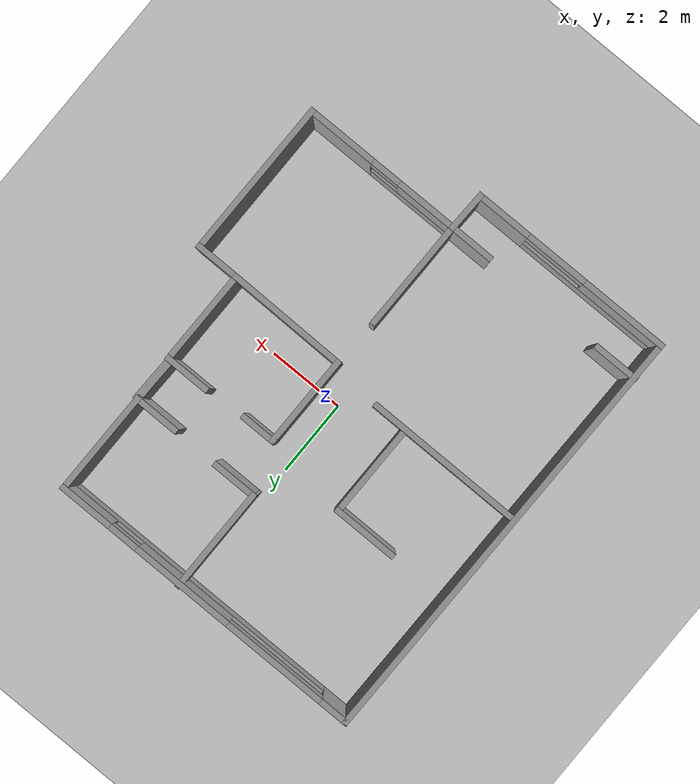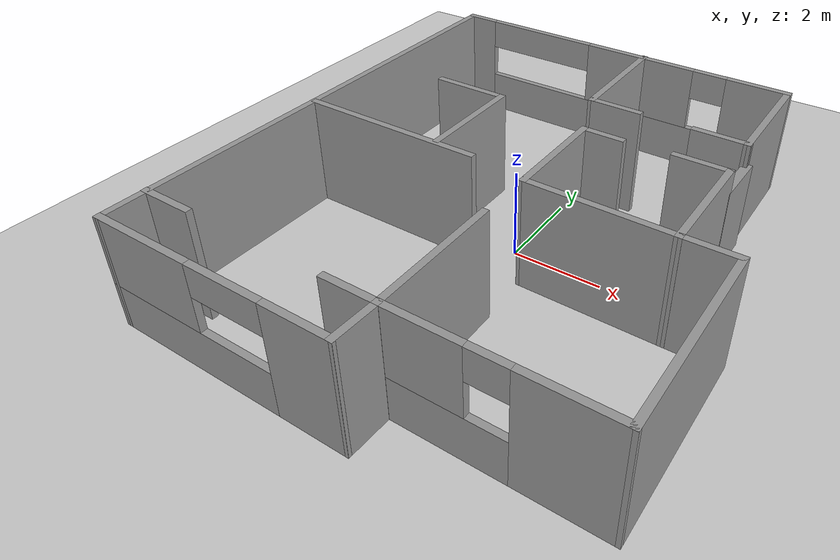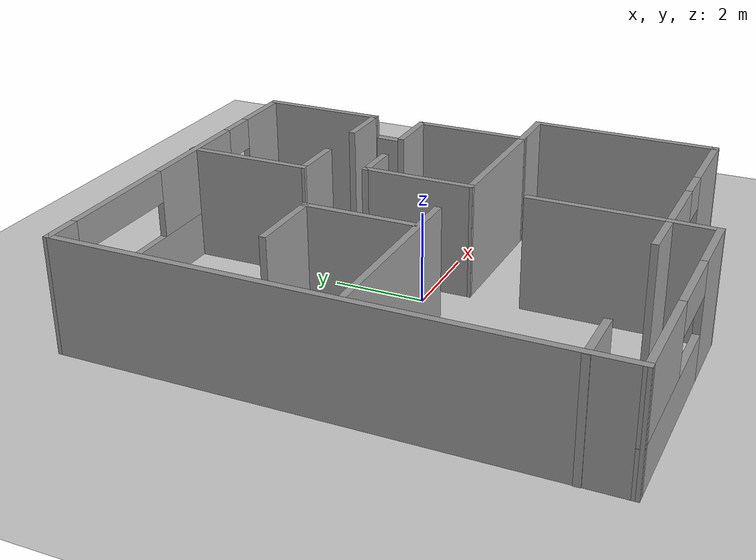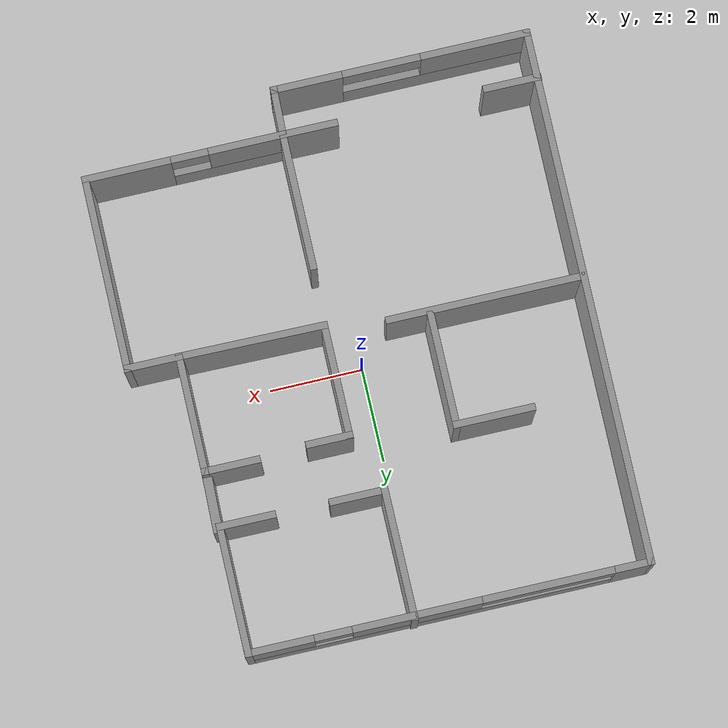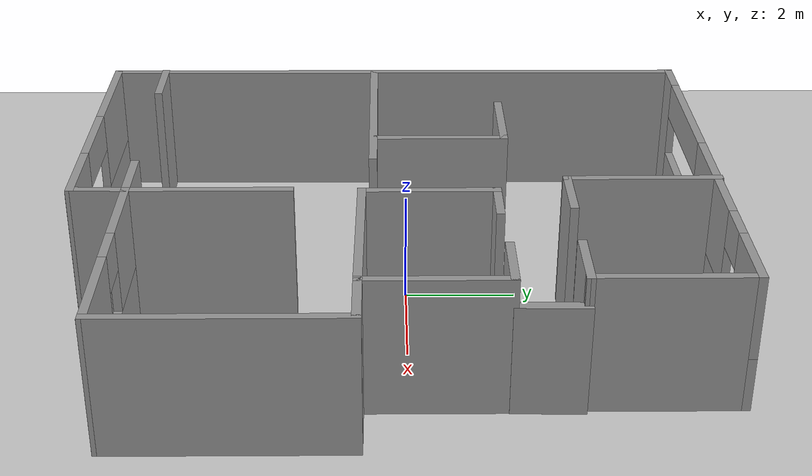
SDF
<sdf version="1.6">
 <world name="default">
  <light name="sun" type="directional">
   <pose>0 0 10 0 -0 0</pose>
   <diffuse>0.8 0.8 0.8 1</diffuse>
   <specular>0.2 0.2 0.2 1</specular>
   <attenuation>
    <range>1000</range>
    <constant>0.9</constant>
    <linear>0.01</linear>
    <quadratic>0.001</quadratic>
   </attenuation>
   <direction>-0.5 0.1 -0.9</direction>
  </light>
  <model name="ground_plane">
   <static>1</static>
   <link name="link">
    <collision name="collision">
     <geometry><plane><normal>0 0 1</normal><size>100 100</size></plane></geometry>
     <surface>
      <contact><collide_bitmask>65535</collide_bitmask></contact>
      <friction><ode><mu>100</mu><mu2>50</mu2></ode></friction>
     </surface>
    </collision>
    <visual name="visual">
     <cast_shadows>0</cast_shadows>
     <geometry><plane><normal>0 0 1</normal><size>100 100</size></plane></geometry>
     <material>
      <script><uri>file://media/materials/scripts/gazebo.material</uri><name>Gazebo/Grey</name></script>
     </material>
    </visual>
   </link>
  </model>
  <gravity>0 0 -9.8</gravity>
  <magnetic_field>6e-06 2.3e-05 -4.2e-05</magnetic_field>
  <atmosphere type="adiabatic"/>
  <physics name="default_physics" default="0" type="ode">
   <max_step_size>0.001</max_step_size>
   <real_time_factor>1</real_time_factor>
   <real_time_update_rate>1000</real_time_update_rate>
  </physics>
  <scene><ambient>0.4 0.4 0.4 1</ambient><background>0.7 0.7 0.7 1</background><shadows>1</shadows></scene>
  <audio><device>default</device></audio>
  <spherical_coordinates>
   <surface_model>EARTH_WGS84</surface_model>
   <latitude_deg>0</latitude_deg>
   <longitude_deg>0</longitude_deg>
   <elevation>0</elevation>
   <heading_deg>0</heading_deg>
  </spherical_coordinates>
  <model name="home_02room">
   <pose>-0.039902 -0.17498 0 0 -0 0</pose>
   <link name="Door_0">
    <collision name="Door_0_Collision">
     <geometry><box><size>1.26562 0.2 2</size></box></geometry>
     <pose>0 0 1 0 -0 0</pose>
    </collision>
    <visual name="Door_0_Visual">
     <pose>0 0 1 0 -0 0</pose>
     <geometry><box><size>1.26562 0.2 2</size></box></geometry>
     <material>
      <script><uri>file://media/materials/scripts/gazebo.material</uri><name>Gazebo/Grey</name></script>
     </material>
    </visual>
    <pose>3.73558 2.43666 0 0 -0 1.55027</pose>
   </link>
   <link name="Wall_0">
    <pose>-0.548273 5.66521 0 0 -0 0</pose>
    <visual name="Wall_0_Visual_0">
     <pose>-3.89887 0 1.25 0 -0 0</pose>
     <geometry><box><size>0.829522 0.15 2.5</size></box></geometry>
     <material>
      <script><uri>file://media/materials/scripts/gazebo.material</uri><name>Gazebo/Grey</name></script>
      <ambient>1 1 1 1</ambient>
     </material>
     <meta><layer>0</layer></meta>
    </visual>
    <collision name="Wall_0_Collision_0">
     <geometry><box><size>0.829522 0.15 2.5</size></box></geometry>
     <pose>-3.89887 0 1.25 0 -0 0</pose>
    </collision>
    <visual name="Wall_0_Visual_1">
     <pose>0.414761 0 0.5 0 -0 0</pose>
     <geometry><box><size>7.79774 0.15 1</size></box></geometry>
     <material>
      <script><uri>file://media/materials/scripts/gazebo.material</uri><name>Gazebo/Grey</name></script>
      <ambient>1 1 1 1</ambient>
     </material>
     <meta><layer>0</layer></meta>
    </visual>
    <collision name="Wall_0_Collision_1">
     <geometry><box><size>7.79774 0.15 1</size></box></geometry>
     <pose>0.414761 0 0.5 0 -0 0</pose>
    </collision>
    <visual name="Wall_0_Visual_2">
     <pose>0.679806 0 1.75 0 -0 0</pose>
     <geometry><box><size>2.73783 0.15 1.5</size></box></geometry>
     <material>
      <script><uri>file://media/materials/scripts/gazebo.material</uri><name>Gazebo/Grey</name></script>
      <ambient>1 1 1 1</ambient>
     </material>
     <meta><layer>0</layer></meta>
    </visual>
    <collision name="Wall_0_Collision_2">
     <geometry><box><size>2.73783 0.15 1.5</size></box></geometry>
     <pose>0.679806 0 1.75 0 -0 0</pose>
    </collision>
    <visual name="Wall_0_Visual_3">
     <pose>3.58118 0 1.75 0 -0 0</pose>
     <geometry><box><size>1.46491 0.15 1.5</size></box></geometry>
     <material>
      <script><uri>file://media/materials/scripts/gazebo.material</uri><name>Gazebo/Grey</name></script>
      <ambient>1 1 1 1</ambient>
     </material>
     <meta><layer>0</layer></meta>
    </visual>
    <collision name="Wall_0_Collision_3">
     <geometry><box><size>1.46491 0.15 1.5</size></box></geometry>
     <pose>3.58118 0 1.75 0 -0 0</pose>
    </collision>
    <visual name="Wall_0_Visual_4">
     <pose>-2.08661 0 2.15 0 -0 0</pose>
     <geometry><box><size>2.795 0.15 0.7</size></box></geometry>
     <material>
      <script><uri>file://media/materials/scripts/gazebo.material</uri><name>Gazebo/Grey</name></script>
      <ambient>1 1 1 1</ambient>
     </material>
     <meta><layer>0</layer></meta>
    </visual>
    <collision name="Wall_0_Collision_4">
     <geometry><box><size>2.795 0.15 0.7</size></box></geometry>
     <pose>-2.08661 0 2.15 0 -0 0</pose>
    </collision>
    <visual name="Wall_0_Visual_5">
     <pose>2.44872 0 2.15 0 -0 0</pose>
     <geometry><box><size>0.8 0.15 0.7</size></box></geometry>
     <material>
      <script><uri>file://media/materials/scripts/gazebo.material</uri><name>Gazebo/Grey</name></script>
      <ambient>1 1 1 1</ambient>
     </material>
     <meta><layer>0</layer></meta>
    </visual>
    <collision name="Wall_0_Collision_5">
     <geometry><box><size>0.8 0.15 0.7</size></box></geometry>
     <pose>2.44872 0 2.15 0 -0 0</pose>
    </collision>
   </link>
   <link name="Wall_11">
    <collision name="Wall_11_Collision">
     <geometry><box><size>1.11579 0.15 2.5</size></box></geometry>
     <pose>0 0 1.25 0 -0 0</pose>
    </collision>
    <visual name="Wall_11_Visual">
     <pose>0 0 1.25 0 -0 0</pose>
     <geometry><box><size>1.11579 0.15 2.5</size></box></geometry>
     <material>
      <script><uri>file://media/materials/scripts/gazebo.material</uri><name>Gazebo/Grey</name></script>
      <ambient>1 1 1 1</ambient>
     </material>
     <meta><layer>0</layer></meta>
    </visual>
    <pose>0.606653 -5.19653 0 0 -0 -1.59819</pose>
   </link>
   <link name="Wall_12">
    <pose>-2.1177 -5.68585 0 0 -0 -3.13915</pose>
    <visual name="Wall_12_Visual_0">
     <pose>-2.01949 0 1.25 0 -0 0</pose>
     <geometry><box><size>1.53329 0.15 2.5</size></box></geometry>
     <material>
      <script><uri>file://media/materials/scripts/gazebo.material</uri><name>Gazebo/Grey</name></script>
      <ambient>1 1 1 1</ambient>
     </material>
     <meta><layer>0</layer></meta>
    </visual>
    <collision name="Wall_12_Collision_0">
     <geometry><box><size>1.53329 0.15 2.5</size></box></geometry>
     <pose>-2.01949 0 1.25 0 -0 0</pose>
    </collision>
    <visual name="Wall_12_Visual_1">
     <pose>0.766646 0 0.5 0 -0 0</pose>
     <geometry><box><size>4.03897 0.15 1</size></box></geometry>
     <material>
      <script><uri>file://media/materials/scripts/gazebo.material</uri><name>Gazebo/Grey</name></script>
      <ambient>1 1 1 1</ambient>
     </material>
     <meta><layer>0</layer></meta>
    </visual>
    <collision name="Wall_12_Collision_1">
     <geometry><box><size>4.03897 0.15 1</size></box></geometry>
     <pose>0.766646 0 0.5 0 -0 0</pose>
    </collision>
    <visual name="Wall_12_Visual_2">
     <pose>1.60565 0 1.75 0 -0 0</pose>
     <geometry><box><size>2.36097 0.15 1.5</size></box></geometry>
     <material>
      <script><uri>file://media/materials/scripts/gazebo.material</uri><name>Gazebo/Grey</name></script>
      <ambient>1 1 1 1</ambient>
     </material>
     <meta><layer>0</layer></meta>
    </visual>
    <collision name="Wall_12_Collision_2">
     <geometry><box><size>2.36097 0.15 1.5</size></box></geometry>
     <pose>1.60565 0 1.75 0 -0 0</pose>
    </collision>
    <visual name="Wall_12_Visual_3">
     <pose>-0.413841 0 2.15 0 -0 0</pose>
     <geometry><box><size>1.678 0.15 0.7</size></box></geometry>
     <material>
      <script><uri>file://media/materials/scripts/gazebo.material</uri><name>Gazebo/Grey</name></script>
      <ambient>1 1 1 1</ambient>
     </material>
     <meta><layer>0</layer></meta>
    </visual>
    <collision name="Wall_12_Collision_3">
     <geometry><box><size>1.678 0.15 0.7</size></box></geometry>
     <pose>-0.413841 0 2.15 0 -0 0</pose>
    </collision>
   </link>
   <link name="Wall_13">
    <collision name="Wall_13_Collision">
     <geometry><box><size>11.5078 0.15 2.5</size></box></geometry>
     <pose>0 0 1.25 0 -0 0</pose>
    </collision>
    <visual name="Wall_13_Visual">
     <pose>0 0 1.25 0 -0 0</pose>
     <geometry><box><size>11.5078 0.15 2.5</size></box></geometry>
     <material>
      <script><uri>file://media/materials/scripts/gazebo.material</uri><name>Gazebo/Grey</name></script>
      <ambient>1 1 1 1</ambient>
     </material>
     <meta><layer>0</layer></meta>
    </visual>
    <pose>-4.80785 -0.013627 0 0 -0 1.5671</pose>
   </link>
   <link name="Wall_15">
    <collision name="Wall_15_Collision">
     <geometry><box><size>4.25 0.15 2.5</size></box></geometry>
     <pose>0 0 1.25 0 -0 0</pose>
    </collision>
    <visual name="Wall_15_Visual">
     <pose>0 0 1.25 0 -0 0</pose>
     <geometry><box><size>4.25 0.15 2.5</size></box></geometry>
     <material>
      <script><uri>file://media/materials/scripts/gazebo.material</uri><name>Gazebo/Grey</name></script>
      <ambient>1 1 1 1</ambient>
     </material>
     <meta><layer>0</layer></meta>
    </visual>
    <pose>-2.71524 -0.419306 0 0 -0 0</pose>
   </link>
   <link name="Wall_17">
    <collision name="Wall_17_Collision">
     <geometry><box><size>2.83314 0.15 2.5</size></box></geometry>
     <pose>0 0 1.25 0 -0 0</pose>
    </collision>
    <visual name="Wall_17_Visual">
     <pose>0 0 1.25 0 -0 0</pose>
     <geometry><box><size>2.83314 0.15 2.5</size></box></geometry>
     <material>
      <script><uri>file://media/materials/scripts/gazebo.material</uri><name>Gazebo/Grey</name></script>
      <ambient>1 1 1 1</ambient>
     </material>
     <meta><layer>0</layer></meta>
    </visual>
    <pose>0.206676 4.35095 0 0 -0 -1.56781</pose>
   </link>
   <link name="Wall_18">
    <collision name="Wall_18_Collision">
     <geometry><box><size>1.25 0.15 2.5</size></box></geometry>
     <pose>0 0 1.25 0 -0 0</pose>
    </collision>
    <visual name="Wall_18_Visual">
     <pose>0 0 1.25 0 -0 0</pose>
     <geometry><box><size>1.25 0.15 2.5</size></box></geometry>
     <material>
      <script><uri>file://media/materials/scripts/gazebo.material</uri><name>Gazebo/Grey</name></script>
      <ambient>1 1 1 1</ambient>
     </material>
     <meta><layer>0</layer></meta>
    </visual>
    <pose>0.760681 3.00938 0 0 -0 0</pose>
   </link>
   <link name="Wall_2">
    <collision name="Wall_2_Collision">
     <geometry><box><size>2.82145 0.15 2.5</size></box></geometry>
     <pose>0 0 1.25 0 -0 0</pose>
    </collision>
    <visual name="Wall_2_Visual">
     <pose>0 0 1.25 0 -0 0</pose>
     <geometry><box><size>2.82145 0.15 2.5</size></box></geometry>
     <material>
      <script><uri>file://media/materials/scripts/gazebo.material</uri><name>Gazebo/Grey</name></script>
      <ambient>1 1 1 1</ambient>
     </material>
     <meta><layer>0</layer></meta>
    </visual>
    <pose>3.69034 4.32949 0 0 -0 -1.5708</pose>
   </link>
   <link name="Wall_20">
    <collision name="Wall_20_Collision">
     <geometry><box><size>1.26239 0.15 2.5</size></box></geometry>
     <pose>0 0 1.25 0 -0 0</pose>
    </collision>
    <visual name="Wall_20_Visual">
     <pose>0 0 1.25 0 -0 0</pose>
     <geometry><box><size>1.26239 0.15 2.5</size></box></geometry>
     <material>
      <script><uri>file://media/materials/scripts/gazebo.material</uri><name>Gazebo/Grey</name></script>
      <ambient>1 1 1 1</ambient>
     </material>
     <meta><layer>0</layer></meta>
    </visual>
    <pose>3.13415 2.99496 0 0 -0 -0.002155</pose>
   </link>
   <link name="Wall_22">
    <collision name="Wall_22_Collision">
     <geometry><box><size>1.75 0.15 2.5</size></box></geometry>
     <pose>0 0 1.25 0 -0 0</pose>
    </collision>
    <visual name="Wall_22_Visual">
     <pose>0 0 1.25 0 -0 0</pose>
     <geometry><box><size>1.75 0.15 2.5</size></box></geometry>
     <material>
      <script><uri>file://media/materials/scripts/gazebo.material</uri><name>Gazebo/Grey</name></script>
      <ambient>1 1 1 1</ambient>
     </material>
     <meta><layer>0</layer></meta>
    </visual>
    <pose>-2.33303 2.0173 0 0 -0 0</pose>
   </link>
   <link name="Wall_23">
    <collision name="Wall_23_Collision">
     <geometry><box><size>2.5 0.15 2.5</size></box></geometry>
     <pose>0 0 1.25 0 -0 0</pose>
    </collision>
    <visual name="Wall_23_Visual">
     <pose>0 0 1.25 0 -0 0</pose>
     <geometry><box><size>2.5 0.15 2.5</size></box></geometry>
     <material>
      <script><uri>file://media/materials/scripts/gazebo.material</uri><name>Gazebo/Grey</name></script>
      <ambient>1 1 1 1</ambient>
     </material>
     <meta><layer>0</layer></meta>
    </visual>
    <pose>-1.53303 0.842302 0 0 -0 -1.5708</pose>
   </link>
   <link name="Wall_25">
    <collision name="Wall_25_Collision">
     <geometry><box><size>2.5 0.15 2.5</size></box></geometry>
     <pose>0 0 1.25 0 -0 0</pose>
    </collision>
    <visual name="Wall_25_Visual">
     <pose>0 0 1.25 0 -0 0</pose>
     <geometry><box><size>2.5 0.15 2.5</size></box></geometry>
     <material>
      <script><uri>file://media/materials/scripts/gazebo.material</uri><name>Gazebo/Grey</name></script>
      <ambient>1 1 1 1</ambient>
     </material>
     <meta><layer>0</layer></meta>
    </visual>
    <pose>0.667868 0.569257 0 0 -0 -1.5708</pose>
   </link>
   <link name="Wall_28">
    <collision name="Wall_28_Collision">
     <geometry><box><size>3.22067 0.15 2.5</size></box></geometry>
     <pose>0 0 1.25 0 -0 0</pose>
    </collision>
    <visual name="Wall_28_Visual">
     <pose>0 0 1.25 0 -0 0</pose>
     <geometry><box><size>3.22067 0.15 2.5</size></box></geometry>
     <material>
      <script><uri>file://media/materials/scripts/gazebo.material</uri><name>Gazebo/Grey</name></script>
      <ambient>1 1 1 1</ambient>
     </material>
     <meta><layer>0</layer></meta>
    </visual>
    <pose>2.20314 -0.61998 0 0 -0 -0.009273</pose>
   </link>
   <link name="Wall_30">
    <collision name="Wall_30_Collision">
     <geometry><box><size>1 0.15 2.5</size></box></geometry>
     <pose>0 0 1.25 0 -0 0</pose>
    </collision>
    <visual name="Wall_30_Visual">
     <pose>0 0 1.25 0 -0 0</pose>
     <geometry><box><size>1 0.15 2.5</size></box></geometry>
     <material>
      <script><uri>file://media/materials/scripts/gazebo.material</uri><name>Gazebo/Grey</name></script>
      <ambient>1 1 1 1</ambient>
     </material>
     <meta><layer>0</layer></meta>
    </visual>
    <pose>1.09287 1.74426 0 0 -0 0</pose>
   </link>
   <link name="Wall_33">
    <collision name="Wall_33_Collision">
     <geometry><box><size>1.25 0.15 2.5</size></box></geometry>
     <pose>0 0 1.25 0 -0 0</pose>
    </collision>
    <visual name="Wall_33_Visual">
     <pose>0 0 1.25 0 -0 0</pose>
     <geometry><box><size>1.25 0.15 2.5</size></box></geometry>
     <material>
      <script><uri>file://media/materials/scripts/gazebo.material</uri><name>Gazebo/Grey</name></script>
      <ambient>1 1 1 1</ambient>
     </material>
     <meta><layer>0</layer></meta>
    </visual>
    <pose>3.18841 1.81439 0 0 -0 3.14159</pose>
   </link>
   <link name="Wall_35">
    <collision name="Wall_35_Collision">
     <geometry><box><size>1.25 0.15 2.5</size></box></geometry>
     <pose>0 0 1.25 0 -0 0</pose>
    </collision>
    <visual name="Wall_35_Visual">
     <pose>0 0 1.25 0 -0 0</pose>
     <geometry><box><size>1.25 0.15 2.5</size></box></geometry>
     <material>
      <script><uri>file://media/materials/scripts/gazebo.material</uri><name>Gazebo/Grey</name></script>
      <ambient>1 1 1 1</ambient>
     </material>
     <meta><layer>0</layer></meta>
    </visual>
    <pose>-4.28889 -4.72026 0 0 -0 0</pose>
   </link>
   <link name="Wall_37">
    <collision name="Wall_37_Collision">
     <geometry><box><size>1.25 0.15 2.5</size></box></geometry>
     <pose>0 0 1.25 0 -0 0</pose>
    </collision>
    <visual name="Wall_37_Visual">
     <pose>0 0 1.25 0 -0 0</pose>
     <geometry><box><size>1.25 0.15 2.5</size></box></geometry>
     <material>
      <script><uri>file://media/materials/scripts/gazebo.material</uri><name>Gazebo/Grey</name></script>
      <ambient>1 1 1 1</ambient>
     </material>
     <meta><layer>0</layer></meta>
    </visual>
    <pose>0.069878 -4.71382 0 0 -0 3.14159</pose>
   </link>
   <link name="Wall_39">
    <collision name="Wall_39_Collision">
     <geometry><box><size>3 0.15 2.5</size></box></geometry>
     <pose>0 0 1.25 0 -0 0</pose>
    </collision>
    <visual name="Wall_39_Visual">
     <pose>0 0 1.25 0 -0 0</pose>
     <geometry><box><size>3 0.15 2.5</size></box></geometry>
     <material>
      <script><uri>file://media/materials/scripts/gazebo.material</uri><name>Gazebo/Grey</name></script>
      <ambient>1 1 1 1</ambient>
     </material>
     <meta><layer>0</layer></meta>
    </visual>
    <pose>0.619878 -3.28882 0 0 -0 1.5708</pose>
   </link>
   <link name="Wall_4">
    <collision name="Wall_4_Collision">
     <geometry><box><size>2.59861 0.15 2.5</size></box></geometry>
     <pose>0 0 1.25 0 -0 0</pose>
    </collision>
    <visual name="Wall_4_Visual">
     <pose>0 0 1.25 0 -0 0</pose>
     <geometry><box><size>2.59861 0.15 2.5</size></box></geometry>
     <material>
      <script><uri>file://media/materials/scripts/gazebo.material</uri><name>Gazebo/Grey</name></script>
      <ambient>1 1 1 1</ambient>
     </material>
     <meta><layer>0</layer></meta>
    </visual>
    <pose>3.73841 0.590088 0 0 -0 -1.5708</pose>
   </link>
   <link name="Wall_5">
    <collision name="Wall_5_Collision">
     <geometry><box><size>1.25 0.15 2.5</size></box></geometry>
     <pose>0 0 1.25 0 -0 0</pose>
    </collision>
    <visual name="Wall_5_Visual">
     <pose>0 0 1.25 0 -0 0</pose>
     <geometry><box><size>1.25 0.15 2.5</size></box></geometry>
     <material>
      <script><uri>file://media/materials/scripts/gazebo.material</uri><name>Gazebo/Grey</name></script>
      <ambient>1 1 1 1</ambient>
     </material>
     <meta><layer>0</layer></meta>
    </visual>
    <pose>4.28841 -0.634216 0 0 -0 0</pose>
   </link>
   <link name="Wall_6">
    <collision name="Wall_6_Collision">
     <geometry><box><size>4.21646 0.15 2.5</size></box></geometry>
     <pose>0 0 1.25 0 -0 0</pose>
    </collision>
    <visual name="Wall_6_Visual">
     <pose>0 0 1.25 0 -0 0</pose>
     <geometry><box><size>4.21646 0.15 2.5</size></box></geometry>
     <material>
      <script><uri>file://media/materials/scripts/gazebo.material</uri><name>Gazebo/Grey</name></script>
      <ambient>1 1 1 1</ambient>
     </material>
     <meta><layer>0</layer></meta>
    </visual>
    <pose>4.83853 -2.6674 0 0 -0 -1.57074</pose>
   </link>
   <link name="Wall_8">
    <pose>2.72927 -4.7072 0 0 -0 -3.13846</pose>
    <visual name="Wall_8_Visual_0">
     <pose>-1.23675 0 1.25 0 -0 0</pose>
     <geometry><box><size>1.89529 0.15 2.5</size></box></geometry>
     <material>
      <script><uri>file://media/materials/scripts/gazebo.material</uri><name>Gazebo/Grey</name></script>
      <ambient>1 1 1 1</ambient>
     </material>
     <meta><layer>0</layer></meta>
    </visual>
    <collision name="Wall_8_Collision_0">
     <geometry><box><size>1.89529 0.15 2.5</size></box></geometry>
     <pose>-1.23675 0 1.25 0 -0 0</pose>
    </collision>
    <visual name="Wall_8_Visual_1">
     <pose>0.947648 0 0.5 0 -0 0</pose>
     <geometry><box><size>2.4735 0.15 1</size></box></geometry>
     <material>
      <script><uri>file://media/materials/scripts/gazebo.material</uri><name>Gazebo/Grey</name></script>
      <ambient>1 1 1 1</ambient>
     </material>
     <meta><layer>0</layer></meta>
    </visual>
    <collision name="Wall_8_Collision_1">
     <geometry><box><size>2.4735 0.15 1</size></box></geometry>
     <pose>0.947648 0 0.5 0 -0 0</pose>
    </collision>
    <visual name="Wall_8_Visual_2">
     <pose>1.34765 0 1.75 0 -0 0</pose>
     <geometry><box><size>1.6735 0.15 1.5</size></box></geometry>
     <material>
      <script><uri>file://media/materials/scripts/gazebo.material</uri><name>Gazebo/Grey</name></script>
      <ambient>1 1 1 1</ambient>
     </material>
     <meta><layer>0</layer></meta>
    </visual>
    <collision name="Wall_8_Collision_2">
     <geometry><box><size>1.6735 0.15 1.5</size></box></geometry>
     <pose>1.34765 0 1.75 0 -0 0</pose>
    </collision>
    <visual name="Wall_8_Visual_3">
     <pose>0.110897 0 2.15 0 -0 0</pose>
     <geometry><box><size>0.8 0.15 0.7</size></box></geometry>
     <material>
      <script><uri>file://media/materials/scripts/gazebo.material</uri><name>Gazebo/Grey</name></script>
      <ambient>1 1 1 1</ambient>
     </material>
     <meta><layer>0</layer></meta>
    </visual>
    <collision name="Wall_8_Collision_3">
     <geometry><box><size>0.8 0.15 0.7</size></box></geometry>
     <pose>0.110897 0 2.15 0 -0 0</pose>
    </collision>
   </link>
   <static>1</static>
  </model>
 </world>
</sdf>
